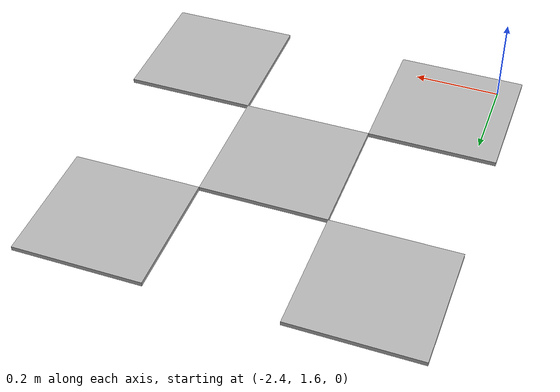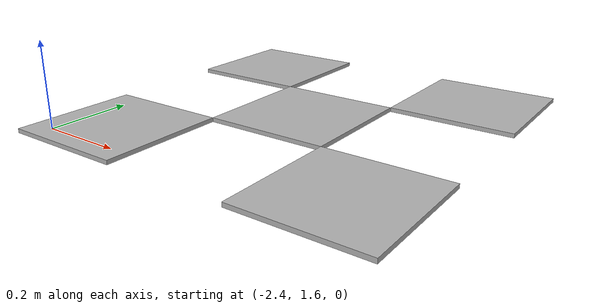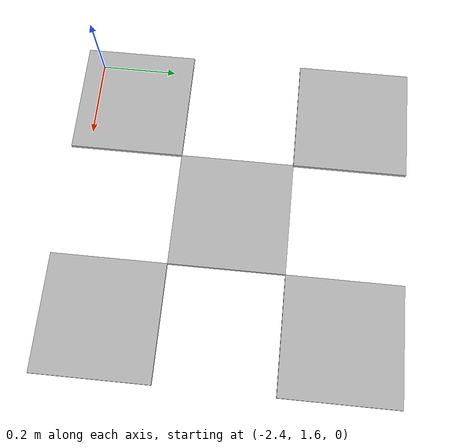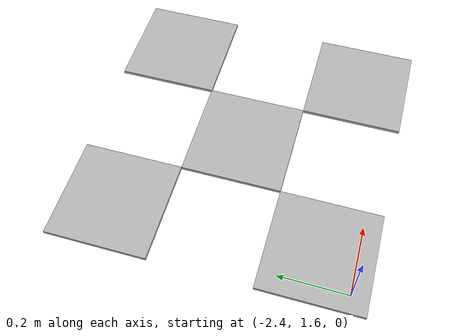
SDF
<?xml version="1.0" ?>
<sdf version="1.4">

	<model name='tag_bundle5'>

		<static>True</static>

		<link name="tag_20">

			<pose>-2 2 0 0 1.5713 1.5713</pose>

			<inertial>
	        	<mass>0.1</mass>

	        	<inertia>
					<ixx>0.0166667</ixx>
					<ixy>0</ixy>
					<ixz>0</ixz>
					<iyy>0.0166667</iyy>
					<iyz>0</iyz>
					<izz>0.0166667</izz>
        		</inertia>

        		<pose frame=''>0 0 0 0 -0 0</pose>
      		</inertial>

			<pose frame=''>0 0 0 0 -0 0</pose>
			<gravity>1</gravity>
			<self_collide>0</self_collide>
			<kinematic>0</kinematic>
			<enable_wind>0</enable_wind>

			<visual name='visual_20'>
				<pose frame=''>0 0 0 0 -0 0</pose>

		        <geometry>
		        	<box>
		        	<size>0.01 0.3 0.3</size>
		        	</box>
		        </geometry>

		        <material>
		        	<lighting>0</lighting>

		        	<script>
		        		<uri>models://media/materials/scripts/Apriltag.material</uri>
		        		<name>Apriltag/id20</name>
		          	</script>

		        	<shader type='vertex'>
		        		<normal_map>__default__</normal_map>
		          	</shader>

		        	<ambient>0.3 0.3 0.3 1</ambient>
		        	<diffuse>0.7 0.7 0.7 1</diffuse>
		        	<specular>0.01 0.01 0.01 1</specular>
		        	<emissive>0 0 0 1</emissive>
		        </material>

		        <transparency>0</transparency>
		        <cast_shadows>1</cast_shadows>
			</visual>

			<collision name='collision_20'>
				<laser_retro>0</laser_retro>
        		<max_contacts>10</max_contacts>
        		<pose frame=''>0 0 0 0 -0 0</pose>

		        <geometry>
		        	<box>
		        		<size>0.01 0.3 0.3</size>
		        	</box>
		        </geometry>

		        <surface>
		        	<friction>
		            	<ode>
		            		<mu>1</mu>
		            		<mu2>1</mu2>
		            		<fdir1>0 0 0</fdir1>
		            		<slip1>0</slip1>
		            		<slip2>0</slip2>
		            	</ode>

		           		<torsional>
		            		<coefficient>1</coefficient>
	            			<patch_radius>0</patch_radius>
	            			<surface_radius>0</surface_radius>
	            			<use_patch_radius>1</use_patch_radius>

	            			<ode>
		                		<slip>0</slip>
		              		</ode>
		            	</torsional>
		          	</friction>

		        	<bounce>
		            	<restitution_coefficient>0</restitution_coefficient>
		            	<threshold>1e+06</threshold>
		        	</bounce>

		        	<contact>
		            	<collide_without_contact>0</collide_without_contact>
		            	<collide_without_contact_bitmask>1</collide_without_contact_bitmask>
		            	<collide_bitmask>1</collide_bitmask>

		            	<ode>
		            		<soft_cfm>0</soft_cfm>
		            		<soft_erp>0.2</soft_erp>
		            		<kp>1e+13</kp>
		            		<kd>1</kd>
		            		<max_vel>0.01</max_vel>
		            		<min_depth>0</min_depth>
		            	</ode>

			            <bullet>
			            	<split_impulse>1</split_impulse>
			            	<split_impulse_penetration_threshold>-0.01</split_impulse_penetration_threshold>
			            	<soft_cfm>0</soft_cfm>
			            	<soft_erp>0.2</soft_erp>
			            	<kp>1e+13</kp>
			            	<kd>1</kd>
			            </bullet>
		        	</contact>
		        </surface>
		    </collision>
		</link>

		<link name="tag_21">

			<pose>-1.7 1.7 0 0 1.5713 1.5713</pose>

			<inertial>
	        	<mass>0.1</mass>

	        	<inertia>
					<ixx>0.0166667</ixx>
					<ixy>0</ixy>
					<ixz>0</ixz>
					<iyy>0.0166667</iyy>
					<iyz>0</iyz>
					<izz>0.0166667</izz>
        		</inertia>

        		<pose frame=''>0 0 0 0 -0 0</pose>
      		</inertial>

			<pose frame=''>0 0 0 0 -0 0</pose>
			<gravity>1</gravity>
			<self_collide>0</self_collide>
			<kinematic>0</kinematic>
			<enable_wind>0</enable_wind>

 			<visual name='visual_21'>
				<pose frame=''>0 0 0 0 -0 0</pose>

		        <geometry>
		        	<box>
		        	<size>0.01 0.3 0.3</size>
		        	</box>
		        </geometry>

		        <material>
		        	<lighting>0</lighting>

		        	<script>
		        		<uri>models://media/materials/scripts/Apriltag.material</uri>
		        		<name>Apriltag/id21</name>
		          	</script>

		        	<shader type='vertex'>
		        		<normal_map>__default__</normal_map>
		          	</shader>

		        	<ambient>0.3 0.3 0.3 1</ambient>
		        	<diffuse>0.7 0.7 0.7 1</diffuse>
		        	<specular>0.01 0.01 0.01 1</specular>
		        	<emissive>0 0 0 1</emissive>
		        </material>

		        <transparency>0</transparency>
		        <cast_shadows>1</cast_shadows>
			</visual>

			<collision name='collision_21'>
				<laser_retro>0</laser_retro>
        		<max_contacts>10</max_contacts>
        		<pose frame=''>0 0 0 0 -0 0</pose>

		        <geometry>
		        	<box>
		        		<size>0.01 0.3 0.3</size>
		        	</box>
		        </geometry>

		        <surface>
		        	<friction>
		            	<ode>
		            		<mu>1</mu>
		            		<mu2>1</mu2>
		            		<fdir1>0 0 0</fdir1>
		            		<slip1>0</slip1>
		            		<slip2>0</slip2>
		            	</ode>

		           		<torsional>
		            		<coefficient>1</coefficient>
	            			<patch_radius>0</patch_radius>
	            			<surface_radius>0</surface_radius>
	            			<use_patch_radius>1</use_patch_radius>

	            			<ode>
		                		<slip>0</slip>
		              		</ode>
		            	</torsional>
		          	</friction>

		        	<bounce>
		            	<restitution_coefficient>0</restitution_coefficient>
		            	<threshold>1e+06</threshold>
		        	</bounce>

		        	<contact>
		            	<collide_without_contact>0</collide_without_contact>
		            	<collide_without_contact_bitmask>1</collide_without_contact_bitmask>
		            	<collide_bitmask>1</collide_bitmask>

		            	<ode>
		            		<soft_cfm>0</soft_cfm>
		            		<soft_erp>0.2</soft_erp>
		            		<kp>1e+13</kp>
		            		<kd>1</kd>
		            		<max_vel>0.01</max_vel>
		            		<min_depth>0</min_depth>
		            	</ode>

			            <bullet>
			            	<split_impulse>1</split_impulse>
			            	<split_impulse_penetration_threshold>-0.01</split_impulse_penetration_threshold>
			            	<soft_cfm>0</soft_cfm>
			            	<soft_erp>0.2</soft_erp>
			            	<kp>1e+13</kp>
			            	<kd>1</kd>
			            </bullet>
		        	</contact>
		        </surface>
		    </collision>
		</link>

		<link name="tag_22">

			<pose>-1.7 2.3 0 0 1.5713 1.5713</pose>

			<inertial>
	        	<mass>0.1</mass>

	        	<inertia>
					<ixx>0.0166667</ixx>
					<ixy>0</ixy>
					<ixz>0</ixz>
					<iyy>0.0166667</iyy>
					<iyz>0</iyz>
					<izz>0.0166667</izz>
        		</inertia>

        		<pose frame=''>0 0 0 0 -0 0</pose>
      		</inertial>

			<pose frame=''>0 0 0 0 -0 0</pose>
			<gravity>1</gravity>
			<self_collide>0</self_collide>
			<kinematic>0</kinematic>
			<enable_wind>0</enable_wind>

			<visual name='visual_22'>
				<pose frame=''>0 0 0 0 -0 0</pose>

		        <geometry>
		        	<box>
		        	<size>0.01 0.3 0.3</size>
		        	</box>
		        </geometry>

		        <material>
		        	<lighting>0</lighting>

		        	<script>
		        		<uri>models://media/materials/scripts/Apriltag.material</uri>
		        		<name>Apriltag/id22</name>
		          	</script>

		        	<shader type='vertex'>
		        		<normal_map>__default__</normal_map>
		          	</shader>

		        	<ambient>0.3 0.3 0.3 1</ambient>
		        	<diffuse>0.7 0.7 0.7 1</diffuse>
		        	<specular>0.01 0.01 0.01 1</specular>
		        	<emissive>0 0 0 1</emissive>
		        </material>

		        <transparency>0</transparency>
		        <cast_shadows>1</cast_shadows>
			</visual>

			<collision name='collision_22'>
				<laser_retro>0</laser_retro>
        		<max_contacts>10</max_contacts>
        		<pose frame=''>0 0 0 0 -0 0</pose>

		        <geometry>
		        	<box>
		        		<size>0.01 0.3 0.3</size>
		        	</box>
		        </geometry>

		        <surface>
		        	<friction>
		            	<ode>
		            		<mu>1</mu>
		            		<mu2>1</mu2>
		            		<fdir1>0 0 0</fdir1>
		            		<slip1>0</slip1>
		            		<slip2>0</slip2>
		            	</ode>

		           		<torsional>
		            		<coefficient>1</coefficient>
	            			<patch_radius>0</patch_radius>
	            			<surface_radius>0</surface_radius>
	            			<use_patch_radius>1</use_patch_radius>

	            			<ode>
		                		<slip>0</slip>
		              		</ode>
		            	</torsional>
		          	</friction>

		        	<bounce>
		            	<restitution_coefficient>0</restitution_coefficient>
		            	<threshold>1e+06</threshold>
		        	</bounce>

		        	<contact>
		            	<collide_without_contact>0</collide_without_contact>
		            	<collide_without_contact_bitmask>1</collide_without_contact_bitmask>
		            	<collide_bitmask>1</collide_bitmask>

		            	<ode>
		            		<soft_cfm>0</soft_cfm>
		            		<soft_erp>0.2</soft_erp>
		            		<kp>1e+13</kp>
		            		<kd>1</kd>
		            		<max_vel>0.01</max_vel>
		            		<min_depth>0</min_depth>
		            	</ode>

			            <bullet>
			            	<split_impulse>1</split_impulse>
			            	<split_impulse_penetration_threshold>-0.01</split_impulse_penetration_threshold>
			            	<soft_cfm>0</soft_cfm>
			            	<soft_erp>0.2</soft_erp>
			            	<kp>1e+13</kp>
			            	<kd>1</kd>
			            </bullet>
		        	</contact>
		        </surface>
		    </collision>
		</link>

		<link name="tag_23">

			<pose>-2.3 2.3 0 0 1.5713 1.5713</pose>

			<inertial>
	        	<mass>0.1</mass>

	        	<inertia>
					<ixx>0.0166667</ixx>
					<ixy>0</ixy>
					<ixz>0</ixz>
					<iyy>0.0166667</iyy>
					<iyz>0</iyz>
					<izz>0.0166667</izz>
        		</inertia>

        		<pose frame=''>0 0 0 0 -0 0</pose>
      		</inertial>

			<pose frame=''>0 0 0 0 -0 0</pose>
			<gravity>1</gravity>
			<self_collide>0</self_collide>
			<kinematic>0</kinematic>
			<enable_wind>0</enable_wind>

			<visual name='visual_23'>
				<pose frame=''>0 0 0 0 -0 0</pose>

		        <geometry>
		        	<box>
		        	<size>0.01 0.3 0.3</size>
		        	</box>
		        </geometry>

		        <material>
		        	<lighting>0</lighting>

		        	<script>
		        		<uri>models://media/materials/scripts/Apriltag.material</uri>
		        		<name>Apriltag/id23</name>
		          	</script>

		        	<shader type='vertex'>
		        		<normal_map>__default__</normal_map>
		          	</shader>

		        	<ambient>0.3 0.3 0.3 1</ambient>
		        	<diffuse>0.7 0.7 0.7 1</diffuse>
		        	<specular>0.01 0.01 0.01 1</specular>
		        	<emissive>0 0 0 1</emissive>
		        </material>

		        <transparency>0</transparency>
		        <cast_shadows>1</cast_shadows>
			</visual>

			<collision name='collision_23'>
				<laser_retro>0</laser_retro>
        		<max_contacts>10</max_contacts>
        		<pose frame=''>0 0 0 0 -0 0</pose>

		        <geometry>
		        	<box>
		        		<size>0.01 0.3 0.3</size>
		        	</box>
		        </geometry>

		        <surface>
		        	<friction>
		            	<ode>
		            		<mu>1</mu>
		            		<mu2>1</mu2>
		            		<fdir1>0 0 0</fdir1>
		            		<slip1>0</slip1>
		            		<slip2>0</slip2>
		            	</ode>

		           		<torsional>
		            		<coefficient>1</coefficient>
	            			<patch_radius>0</patch_radius>
	            			<surface_radius>0</surface_radius>
	            			<use_patch_radius>1</use_patch_radius>

	            			<ode>
		                		<slip>0</slip>
		              		</ode>
		            	</torsional>
		          	</friction>

		        	<bounce>
		            	<restitution_coefficient>0</restitution_coefficient>
		            	<threshold>1e+06</threshold>
		        	</bounce>

		        	<contact>
		            	<collide_without_contact>0</collide_without_contact>
		            	<collide_without_contact_bitmask>1</collide_without_contact_bitmask>
		            	<collide_bitmask>1</collide_bitmask>

		            	<ode>
		            		<soft_cfm>0</soft_cfm>
		            		<soft_erp>0.2</soft_erp>
		            		<kp>1e+13</kp>
		            		<kd>1</kd>
		            		<max_vel>0.01</max_vel>
		            		<min_depth>0</min_depth>
		            	</ode>

			            <bullet>
			            	<split_impulse>1</split_impulse>
			            	<split_impulse_penetration_threshold>-0.01</split_impulse_penetration_threshold>
			            	<soft_cfm>0</soft_cfm>
			            	<soft_erp>0.2</soft_erp>
			            	<kp>1e+13</kp>
			            	<kd>1</kd>
			            </bullet>
		        	</contact>
		        </surface>
		    </collision>
		</link>

		<link name="tag_24">

			<pose>-2.3 1.7 0 0 1.5713 1.5713</pose>

			<inertial>
	        	<mass>0.1</mass>

	        	<inertia>
					<ixx>0.0166667</ixx>
					<ixy>0</ixy>
					<ixz>0</ixz>
					<iyy>0.0166667</iyy>
					<iyz>0</iyz>
					<izz>0.0166667</izz>
        		</inertia>

        		<pose frame=''>0 0 0 0 -0 0</pose>
      		</inertial>

			<pose frame=''>0 0 0 0 -0 0</pose>
			<gravity>1</gravity>
			<self_collide>0</self_collide>
			<kinematic>0</kinematic>
			<enable_wind>0</enable_wind>

			<visual name='visual_24'>
				<pose frame=''>0 0 0 0 -0 0</pose>

		        <geometry>
		        	<box>
		        	<size>0.01 0.3 0.3</size>
		        	</box>
		        </geometry>

		        <material>
		        	<lighting>0</lighting>

		        	<script>
		        		<uri>models://media/materials/scripts/Apriltag.material</uri>
		        		<name>Apriltag/id24</name>
		          	</script>

		        	<shader type='vertex'>
		        		<normal_map>__default__</normal_map>
		          	</shader>

		        	<ambient>0.3 0.3 0.3 1</ambient>
		        	<diffuse>0.7 0.7 0.7 1</diffuse>
		        	<specular>0.01 0.01 0.01 1</specular>
		        	<emissive>0 0 0 1</emissive>
		        </material>

		        <transparency>0</transparency>
		        <cast_shadows>1</cast_shadows>
			</visual>

			<collision name='collision_24'>
				<laser_retro>0</laser_retro>
        		<max_contacts>10</max_contacts>
        		<pose frame=''>0 0 0 0 -0 0</pose>

		        <geometry>
		        	<box>
		        		<size>0.01 0.3 0.3</size>
		        	</box>
		        </geometry>

		        <surface>
		        	<friction>
		            	<ode>
		            		<mu>1</mu>
		            		<mu2>1</mu2>
		            		<fdir1>0 0 0</fdir1>
		            		<slip1>0</slip1>
		            		<slip2>0</slip2>
		            	</ode>

		           		<torsional>
		            		<coefficient>1</coefficient>
	            			<patch_radius>0</patch_radius>
	            			<surface_radius>0</surface_radius>
	            			<use_patch_radius>1</use_patch_radius>

	            			<ode>
		                		<slip>0</slip>
		              		</ode>
		            	</torsional>
		          	</friction>

		        	<bounce>
		            	<restitution_coefficient>0</restitution_coefficient>
		            	<threshold>1e+06</threshold>
		        	</bounce>

		        	<contact>
		            	<collide_without_contact>0</collide_without_contact>
		            	<collide_without_contact_bitmask>1</collide_without_contact_bitmask>
		            	<collide_bitmask>1</collide_bitmask>

		            	<ode>
		            		<soft_cfm>0</soft_cfm>
		            		<soft_erp>0.2</soft_erp>
		            		<kp>1e+13</kp>
		            		<kd>1</kd>
		            		<max_vel>0.01</max_vel>
		            		<min_depth>0</min_depth>
		            	</ode>

			            <bullet>
			            	<split_impulse>1</split_impulse>
			            	<split_impulse_penetration_threshold>-0.01</split_impulse_penetration_threshold>
			            	<soft_cfm>0</soft_cfm>
			            	<soft_erp>0.2</soft_erp>
			            	<kp>1e+13</kp>
			            	<kd>1</kd>
			            </bullet>
		        	</contact>
		        </surface>
		    </collision>
		</link>

		<joint name = "joint_1" type="fixed">
			<axis xyz="0 0 0" />
			<parent link="tag_20" />
			<child link="tag_21" />
	    </joint>

	    <joint name = "joint_2" type="fixed">
			<axis xyz="0 0 0" />
			<parent link="tag_20" />
			<child link="tag_22" />
	    </joint>

	    <joint name = "joint_3" type="fixed">
			<axis xyz="0 0 0" />
			<parent link="tag_20" />
			<child link="tag_23" />
	    </joint>

	    <joint name = "joint_4" type="fixed">
			<axis xyz="0 0 0" />
			<parent link="tag_20" />
			<child link="tag_24" />
	    </joint>

	</model>

</sdf>
